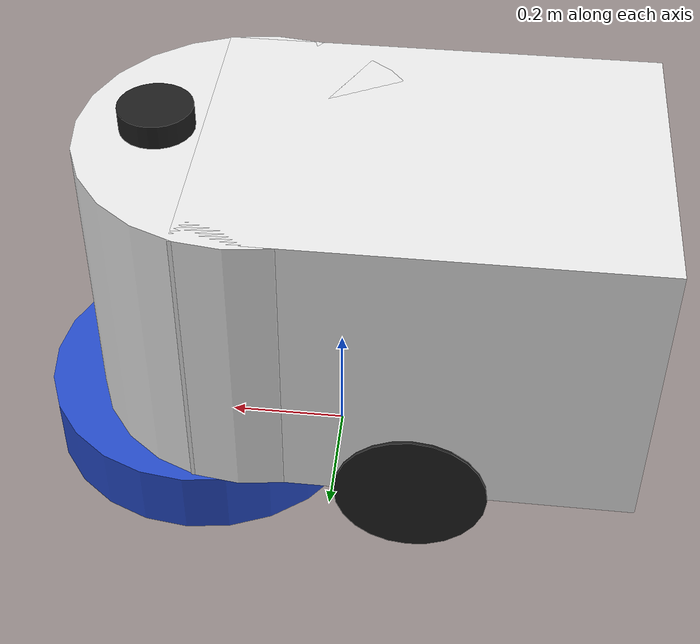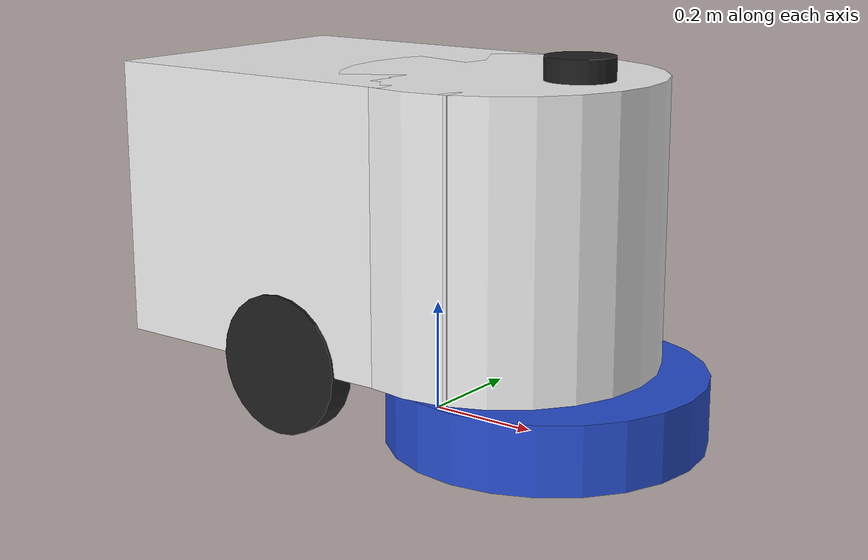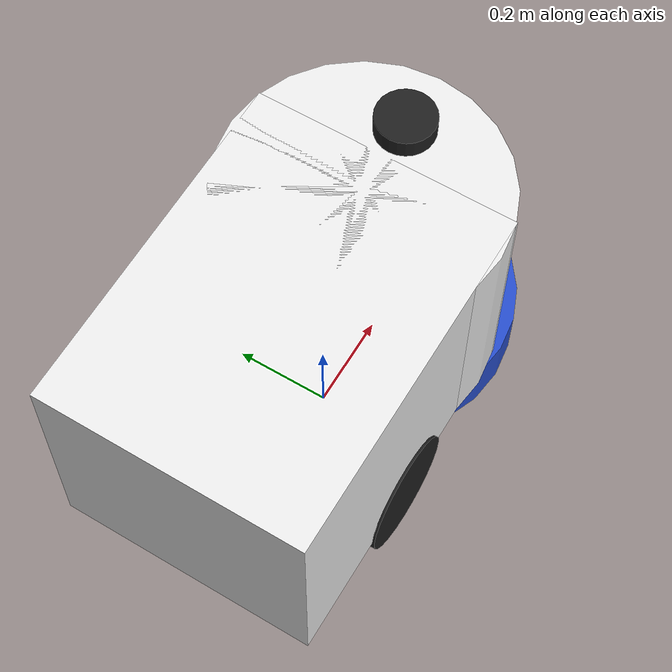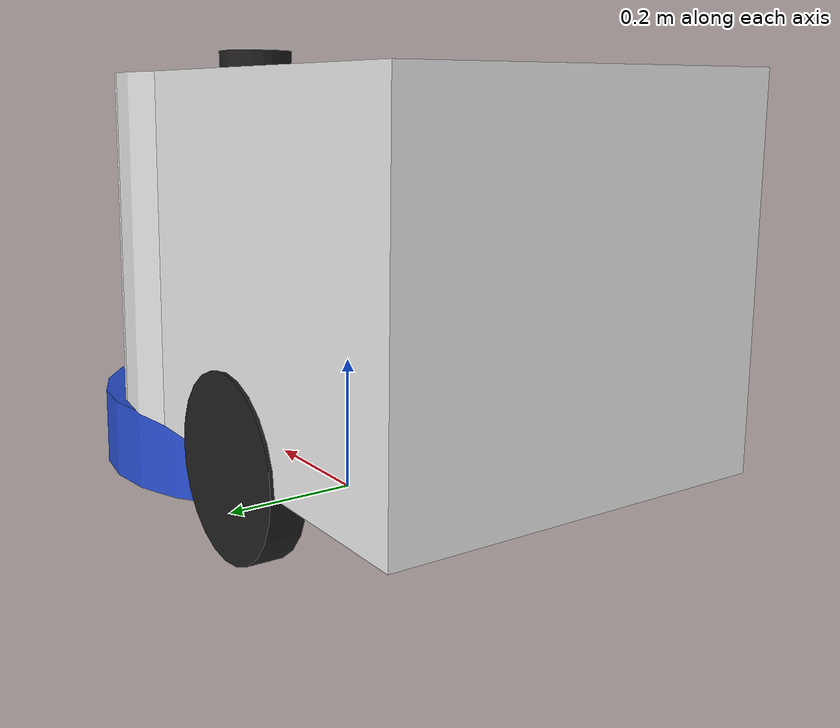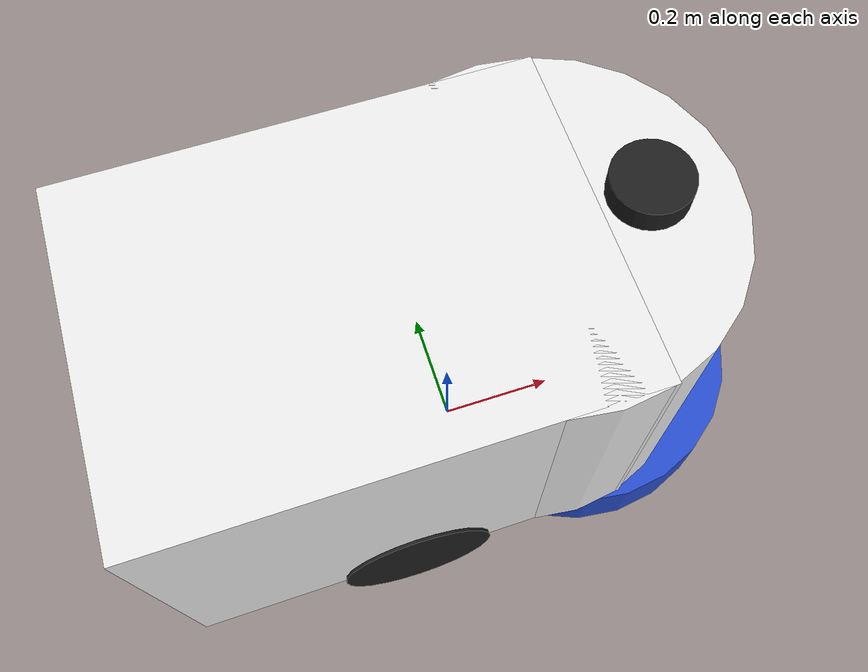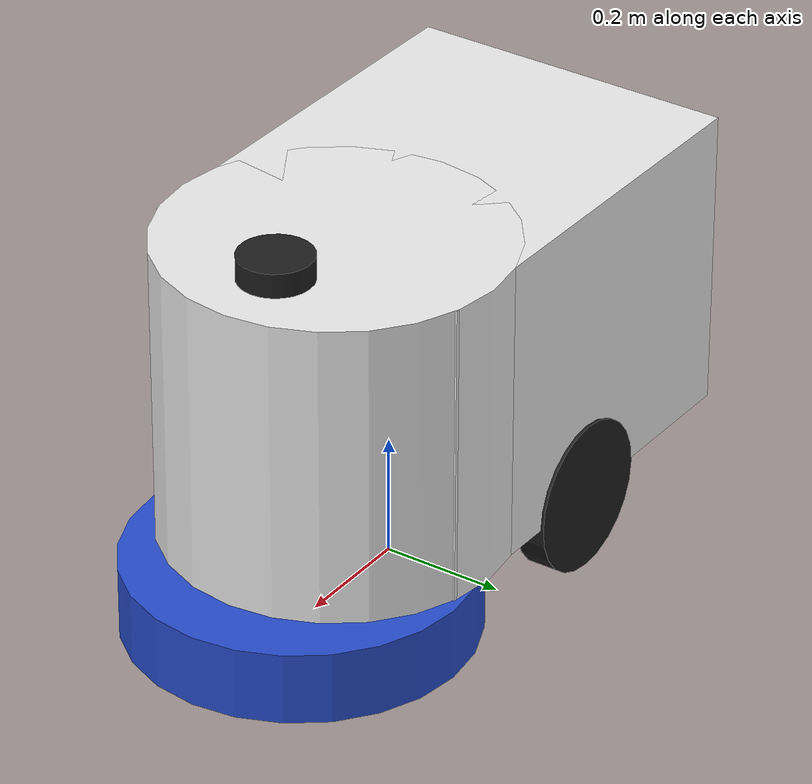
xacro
<?xml version="1.0"?>

<robot xmlns:xacro="http://www.ros.org/wiki/xacro">
  <link name="base_footprint" />

  <xacro:property name="base_z" value="0.5" />
  <link name="base_link">
    <visual>
      <geometry>
        <box size="0.72 0.54  ${base_z}" />
      </geometry>
      <material name="white" />
      <origin xyz="0 0 ${base_z/2}" rpy="0 0 0" />
    </visual>
    <collision>
      <geometry>
        <box size="0.72 0.54  ${base_z}" />
      </geometry>
      <origin xyz="0 0 ${base_z/2}" rpy="0 0 0" />
    </collision>
    <xacro:box_inertia m="16." x="0.72" y="0.54" z="${base_z}" xyz="0 0 ${base_z/2}" rpy="0 0 0" />
  </link>
  <joint name="base_footprint_joint" type="fixed">
    <parent link="base_footprint" />
    <child link="base_link" />
    <origin xyz="-0.14 0 0.125" rpy="0 0 0" />
  </joint>

  <link name="base_front">
    <visual>
      <geometry>
        <cylinder radius="0.28" length="${base_z}" />
      </geometry>
      <material name="white" />
      <origin xyz="0 0 ${base_z/2}" rpy="0 0 0" />
    </visual>
    <collision>
      <geometry>
        <cylinder radius="0.28" length="${base_z}" />
      </geometry>
      <origin xyz="0 0 ${base_z/2}" rpy="0 0 0" />
    </collision>
    <xacro:cylinder_inertia m="10." r="0.28" l="${base_z}" xyz="0 0 ${base_z/2}" rpy="0 0 0" />
  </link>
  <joint name="base_front_joint" type="fixed">
    <parent link="base_link" />
    <child link="base_front" />
    <origin xyz="0.28 0 0" rpy="0 0 0" />
  </joint>

  <link name="left_wheel">
    <visual>
      <geometry>
        <cylinder radius="0.125" length="0.05" />
      </geometry>
      <material name="black" />
      <origin xyz="0 0 0" rpy="0 0 0" />
    </visual>
    <collision>
      <geometry>
        <cylinder radius="0.125" length="0.05" />
      </geometry>
      <origin xyz="0 0 0" rpy="0 0 0" />
    </collision>
    <xacro:cylinder_inertia m="0.5" r="0.125" l="0.05" xyz="0 0 0" rpy="0 0 0" />
  </link>
  <joint name="left_wheel_joint" type="continuous">
    <parent link="base_link" />
    <child link="left_wheel" />
    <origin xyz="0 0.25 0" rpy="1.57 0 3.14" />
    <axis xyz="0 0 1" />
  </joint>

  <link name="right_wheel">
    <visual>
      <geometry>
        <cylinder radius="0.125" length="0.05" />
      </geometry>
      <material name="black" />
      <origin xyz="0 0 0" rpy="0 0 0" />
    </visual>
    <collision>
      <geometry>
        <cylinder radius="0.125" length="0.05" />
      </geometry>
      <origin xyz="0 0 0" rpy="0 0 0" />
    </collision>
    <xacro:cylinder_inertia m="0.5" r="0.125" l="0.05" xyz="0 0 0" rpy="0 0 0" />
  </link>
  <joint name="right_wheel_joint" type="continuous">
    <parent link="base_link" />
    <child link="right_wheel" />
    <origin xyz="0 -0.25 0" rpy="1.57 0 3.14" />
    <axis xyz="0 0 1" />
  </joint>

  <link name="brush">
    <visual>
      <geometry>
        <cylinder radius="0.28" length="0.12" />
      </geometry>
      <material name="blue" />
      <origin xyz="0 0 0.06" rpy="0 0 0" />
    </visual>
    <collision>
      <geometry>
        <cylinder radius="0.28" length="0.12" />
      </geometry>
      <origin xyz="0 0 0.06" rpy="0 0 0" />
    </collision>
    <xacro:cylinder_inertia m="3" r="0.28" l="0.12" xyz="0 0 0.06" rpy="0 0 0" />
  </link>
  <joint name="brush_joint" type="fixed">
    <parent link="base_front" />
    <child link="brush" />
    <origin xyz="0.095 0 -0.125" rpy="0 0 0" />
  </joint>

  <link name="imu_link" />
  <joint name="imu_joint" type="fixed">
    <parent link="base_link" />  <!-- Attach to the appropriate link -->
    <child link="imu_link" />
    <origin xyz="0 0 0" rpy="0 0 0" />  <!-- Adjust position -->
  </joint>

  <xacro:property name="scan_l" value="0.04" />
  <xacro:property name="scan_r" value="0.06" />
  <link name="base_scan">
    <visual>
      <geometry>
        <cylinder radius="${scan_r}" length="${scan_l}" />
      </geometry>
      <material name="black" />
      <origin xyz="0 0 0" rpy="0 0 0" />
    </visual>
    <collision>
      <geometry>
        <cylinder radius="${scan_r}" length="${scan_l}" />
      </geometry>
      <origin xyz="0 0 0" rpy="0 0 0" />
    </collision>
    <xacro:cylinder_inertia m="0.4" r="${scan_r}" l="${scan_l}" xyz="0 0 0" rpy="0 0 0" />
  </link>

  <joint name="scan_joint" type="fixed">
    <parent link="base_front" />
    <child link="base_scan" />
    <origin xyz="0.15 0 ${base_z+scan_l/2}" rpy="0 0 0" />
  </joint>

</robot>
